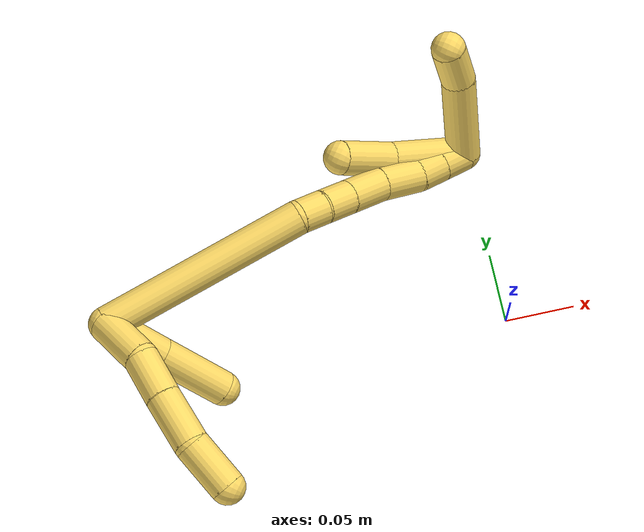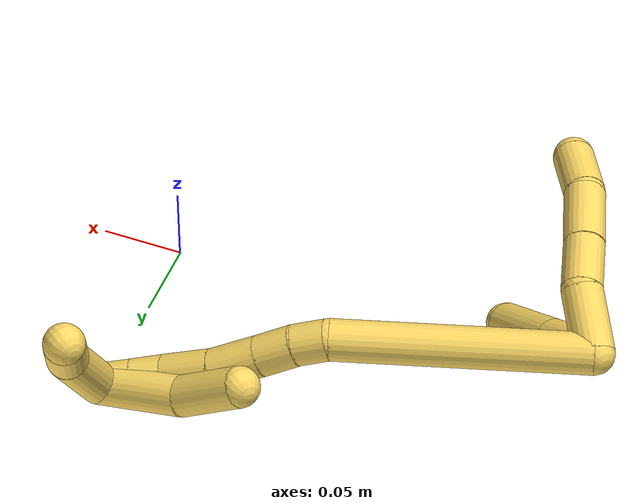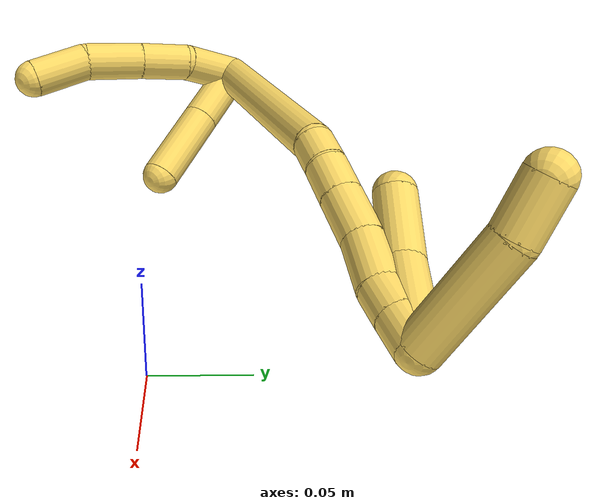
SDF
<sdf version="1.7">
 <world name="default">
  <model name="5">
   <static>0</static>
   <link name="5">
    <collision name="collision-cylinder-e_1_2_8">
     <pose>-0.006412 -0.009242 -0.016908 2.64135 -0.321212 -1.13027</pose>
     <geometry><cylinder><radius>0.0125</radius><length>0.040617</length></cylinder></geometry>
     <surface>
      <friction><ode><mu>1.16</mu><mu2>1.16</mu2><slip1>0</slip1><slip2>0</slip2></ode></friction>
      <contact><ode><kp>1e+06</kp><kd>1</kd><max_vel>0</max_vel><min_depth>0.001</min_depth></ode></contact>
     </surface>
    </collision>
    <visual name="visual-cylinder-e_1_2_8">
     <pose>-0.006412 -0.009242 -0.016908 2.64135 -0.321212 -1.13027</pose>
     <geometry><cylinder><radius>0.0125</radius><length>0.040617</length></cylinder></geometry>
     <material><ambient>1 0.858824 0.4 1</ambient></material>
    </visual>
    <collision name="collision-cylinder-e_2_8_9">
     <pose>-0.022234 -0.022338 -0.046853 2.85416 -0.605543 -2.27392</pose>
     <geometry><cylinder><radius>0.0125</radius><length>0.033066</length></cylinder></geometry>
     <surface>
      <friction><ode><mu>1.16</mu><mu2>1.16</mu2><slip1>0</slip1><slip2>0</slip2></ode></friction>
      <contact><ode><kp>1e+06</kp><kd>1</kd><max_vel>0</max_vel><min_depth>0.001</min_depth></ode></contact>
     </surface>
    </collision>
    <visual name="visual-cylinder-e_2_8_9">
     <pose>-0.022234 -0.022338 -0.046853 2.85416 -0.605543 -2.27392</pose>
     <geometry><cylinder><radius>0.0125</radius><length>0.033066</length></cylinder></geometry>
     <material><ambient>1 0.858824 0.4 1</ambient></material>
    </visual>
    <collision name="collision-cylinder-e_3_9_10">
     <pose>-0.042333 -0.029927 -0.075676 2.9093 -0.582555 -2.39935</pose>
     <geometry><cylinder><radius>0.0125</radius><length>0.038855</length></cylinder></geometry>
     <surface>
      <friction><ode><mu>1.16</mu><mu2>1.16</mu2><slip1>0</slip1><slip2>0</slip2></ode></friction>
      <contact><ode><kp>1e+06</kp><kd>1</kd><max_vel>0</max_vel><min_depth>0.001</min_depth></ode></contact>
     </surface>
    </collision>
    <visual name="visual-cylinder-e_3_9_10">
     <pose>-0.042333 -0.029927 -0.075676 2.9093 -0.582555 -2.39935</pose>
     <geometry><cylinder><radius>0.0125</radius><length>0.038855</length></cylinder></geometry>
     <material><ambient>1 0.858824 0.4 1</ambient></material>
    </visual>
    <collision name="collision-cylinder-e_4_10_6">
     <pose>-0.060843 -0.032426 -0.108438 -3.06895 -0.430743 2.8124</pose>
     <geometry><cylinder><radius>0.0125</radius><length>0.037462</length></cylinder></geometry>
     <surface>
      <friction><ode><mu>1.16</mu><mu2>1.16</mu2><slip1>0</slip1><slip2>0</slip2></ode></friction>
      <contact><ode><kp>1e+06</kp><kd>1</kd><max_vel>0</max_vel><min_depth>0.001</min_depth></ode></contact>
     </surface>
    </collision>
    <visual name="visual-cylinder-e_4_10_6">
     <pose>-0.060843 -0.032426 -0.108438 -3.06895 -0.430743 2.8124</pose>
     <geometry><cylinder><radius>0.0125</radius><length>0.037462</length></cylinder></geometry>
     <material><ambient>1 0.858824 0.4 1</ambient></material>
    </visual>
    <collision name="collision-cylinder-e_1_2_11">
     <pose>-0.000646 0.01038 -0.020521 -2.67328 -0.028075 0.117573</pose>
     <geometry><cylinder><radius>0.0125</radius><length>0.046011</length></cylinder></geometry>
     <surface>
      <friction><ode><mu>1.16</mu><mu2>1.16</mu2><slip1>0</slip1><slip2>0</slip2></ode></friction>
      <contact><ode><kp>1e+06</kp><kd>1</kd><max_vel>0</max_vel><min_depth>0.001</min_depth></ode></contact>
     </surface>
    </collision>
    <visual name="visual-cylinder-e_1_2_11">
     <pose>-0.000646 0.01038 -0.020521 -2.67328 -0.028075 0.117573</pose>
     <geometry><cylinder><radius>0.0125</radius><length>0.046011</length></cylinder></geometry>
     <material><ambient>1 0.858824 0.4 1</ambient></material>
    </visual>
    <collision name="collision-cylinder-e_2_11_5">
     <pose>-0.001935 0.032954 -0.065116 -2.67276 -0.023854 0.099811</pose>
     <geometry><cylinder><radius>0.0125</radius><length>0.053989</length></cylinder></geometry>
     <surface>
      <friction><ode><mu>1.16</mu><mu2>1.16</mu2><slip1>0</slip1><slip2>0</slip2></ode></friction>
      <contact><ode><kp>1e+06</kp><kd>1</kd><max_vel>0</max_vel><min_depth>0.001</min_depth></ode></contact>
     </surface>
    </collision>
    <visual name="visual-cylinder-e_2_11_5">
     <pose>-0.001935 0.032954 -0.065116 -2.67276 -0.023854 0.099811</pose>
     <geometry><cylinder><radius>0.0125</radius><length>0.053989</length></cylinder></geometry>
     <material><ambient>1 0.858824 0.4 1</ambient></material>
    </visual>
    <collision name="collision-cylinder-e_1_2_12">
     <pose>0.062607 0.00217 -0.044612 -3.093 0.95112 -3.04728</pose>
     <geometry><cylinder><radius>0.0125</radius><length>0.153812</length></cylinder></geometry>
     <surface>
      <friction><ode><mu>1.16</mu><mu2>1.16</mu2><slip1>0</slip1><slip2>0</slip2></ode></friction>
      <contact><ode><kp>1e+06</kp><kd>1</kd><max_vel>0</max_vel><min_depth>0.001</min_depth></ode></contact>
     </surface>
    </collision>
    <visual name="visual-cylinder-e_1_2_12">
     <pose>0.062607 0.00217 -0.044612 -3.093 0.95112 -3.04728</pose>
     <geometry><cylinder><radius>0.0125</radius><length>0.153812</length></cylinder></geometry>
     <material><ambient>1 0.858824 0.4 1</ambient></material>
    </visual>
    <collision name="collision-cylinder-e_2_12_13">
     <pose>0.132626 0.007943 -0.095234 -2.6014 0.813463 -1.99908</pose>
     <geometry><cylinder><radius>0.0125</radius><length>0.020401</length></cylinder></geometry>
     <surface>
      <friction><ode><mu>1.16</mu><mu2>1.16</mu2><slip1>0</slip1><slip2>0</slip2></ode></friction>
      <contact><ode><kp>1e+06</kp><kd>1</kd><max_vel>0</max_vel><min_depth>0.001</min_depth></ode></contact>
     </surface>
    </collision>
    <visual name="visual-cylinder-e_2_12_13">
     <pose>0.132626 0.007943 -0.095234 -2.6014 0.813463 -1.99908</pose>
     <geometry><cylinder><radius>0.0125</radius><length>0.020401</length></cylinder></geometry>
     <material><ambient>1 0.858824 0.4 1</ambient></material>
    </visual>
    <collision name="collision-cylinder-e_3_13_14">
     <pose>0.14803 0.01704 -0.107427 -2.41531 0.768293 -1.63258</pose>
     <geometry><cylinder><radius>0.0125</radius><length>0.023002</length></cylinder></geometry>
     <surface>
      <friction><ode><mu>1.16</mu><mu2>1.16</mu2><slip1>0</slip1><slip2>0</slip2></ode></friction>
      <contact><ode><kp>1e+06</kp><kd>1</kd><max_vel>0</max_vel><min_depth>0.001</min_depth></ode></contact>
     </surface>
    </collision>
    <visual name="visual-cylinder-e_3_13_14">
     <pose>0.14803 0.01704 -0.107427 -2.41531 0.768293 -1.63258</pose>
     <geometry><cylinder><radius>0.0125</radius><length>0.023002</length></cylinder></geometry>
     <material><ambient>1 0.858824 0.4 1</ambient></material>
    </visual>
    <collision name="collision-cylinder-e_4_14_15">
     <pose>0.166635 0.029529 -0.121856 -2.43789 0.77599 -1.67789</pose>
     <geometry><cylinder><radius>0.0125</radius><length>0.030304</length></cylinder></geometry>
     <surface>
      <friction><ode><mu>1.16</mu><mu2>1.16</mu2><slip1>0</slip1><slip2>0</slip2></ode></friction>
      <contact><ode><kp>1e+06</kp><kd>1</kd><max_vel>0</max_vel><min_depth>0.001</min_depth></ode></contact>
     </surface>
    </collision>
    <visual name="visual-cylinder-e_4_14_15">
     <pose>0.166635 0.029529 -0.121856 -2.43789 0.77599 -1.67789</pose>
     <geometry><cylinder><radius>0.0125</radius><length>0.030304</length></cylinder></geometry>
     <material><ambient>1 0.858824 0.4 1</ambient></material>
    </visual>
    <collision name="collision-cylinder-e_5_15_16">
     <pose>0.18723 0.042794 -0.14081 -2.61211 0.677499 -1.82992</pose>
     <geometry><cylinder><radius>0.0125</radius><length>0.03185</length></cylinder></geometry>
     <surface>
      <friction><ode><mu>1.16</mu><mu2>1.16</mu2><slip1>0</slip1><slip2>0</slip2></ode></friction>
      <contact><ode><kp>1e+06</kp><kd>1</kd><max_vel>0</max_vel><min_depth>0.001</min_depth></ode></contact>
     </surface>
    </collision>
    <visual name="visual-cylinder-e_5_15_16">
     <pose>0.18723 0.042794 -0.14081 -2.61211 0.677499 -1.82992</pose>
     <geometry><cylinder><radius>0.0125</radius><length>0.03185</length></cylinder></geometry>
     <material><ambient>1 0.858824 0.4 1</ambient></material>
    </visual>
    <collision name="collision-cylinder-e_6_16_17">
     <pose>0.204877 0.052024 -0.157264 -2.66543 0.870143 -2.17917</pose>
     <geometry><cylinder><radius>0.0125</radius><length>0.020052</length></cylinder></geometry>
     <surface>
      <friction><ode><mu>1.16</mu><mu2>1.16</mu2><slip1>0</slip1><slip2>0</slip2></ode></friction>
      <contact><ode><kp>1e+06</kp><kd>1</kd><max_vel>0</max_vel><min_depth>0.001</min_depth></ode></contact>
     </surface>
    </collision>
    <visual name="visual-cylinder-e_6_16_17">
     <pose>0.204877 0.052024 -0.157264 -2.66543 0.870143 -2.17917</pose>
     <geometry><cylinder><radius>0.0125</radius><length>0.020052</length></cylinder></geometry>
     <material><ambient>1 0.858824 0.4 1</ambient></material>
    </visual>
    <collision name="collision-cylinder-e_7_17_1">
     <pose>0.220505 0.057806 -0.168884 -2.69419 0.885037 -2.24636</pose>
     <geometry><cylinder><radius>0.0125</radius><length>0.020578</length></cylinder></geometry>
     <surface>
      <friction><ode><mu>1.16</mu><mu2>1.16</mu2><slip1>0</slip1><slip2>0</slip2></ode></friction>
      <contact><ode><kp>1e+06</kp><kd>1</kd><max_vel>0</max_vel><min_depth>0.001</min_depth></ode></contact>
     </surface>
    </collision>
    <visual name="visual-cylinder-e_7_17_1">
     <pose>0.220505 0.057806 -0.168884 -2.69419 0.885037 -2.24636</pose>
     <geometry><cylinder><radius>0.0125</radius><length>0.020578</length></cylinder></geometry>
     <material><ambient>1 0.858824 0.4 1</ambient></material>
    </visual>
    <collision name="collision-cylinder-e_1_1_18">
     <pose>0.246169 0.033822 -0.162644 1.14628 0.541746 0.354693</pose>
     <geometry><cylinder><radius>0.0125</radius><length>0.068657</length></cylinder></geometry>
     <surface>
      <friction><ode><mu>1.16</mu><mu2>1.16</mu2><slip1>0</slip1><slip2>0</slip2></ode></friction>
      <contact><ode><kp>1e+06</kp><kd>1</kd><max_vel>0</max_vel><min_depth>0.001</min_depth></ode></contact>
     </surface>
    </collision>
    <visual name="visual-cylinder-e_1_1_18">
     <pose>0.246169 0.033822 -0.162644 1.14628 0.541746 0.354693</pose>
     <geometry><cylinder><radius>0.0125</radius><length>0.068657</length></cylinder></geometry>
     <material><ambient>1 0.858824 0.4 1</ambient></material>
    </visual>
    <collision name="collision-cylinder-e_2_18_4">
     <pose>0.268948 -0.005983 -0.143405 1.06958 0.329972 0.196622</pose>
     <geometry><cylinder><radius>0.0125</radius><length>0.031343</length></cylinder></geometry>
     <surface>
      <friction><ode><mu>1.16</mu><mu2>1.16</mu2><slip1>0</slip1><slip2>0</slip2></ode></friction>
      <contact><ode><kp>1e+06</kp><kd>1</kd><max_vel>0</max_vel><min_depth>0.001</min_depth></ode></contact>
     </surface>
    </collision>
    <visual name="visual-cylinder-e_2_18_4">
     <pose>0.268948 -0.005983 -0.143405 1.06958 0.329972 0.196622</pose>
     <geometry><cylinder><radius>0.0125</radius><length>0.031343</length></cylinder></geometry>
     <material><ambient>1 0.858824 0.4 1</ambient></material>
    </visual>
    <collision name="collision-cylinder-e_1_1_19">
     <pose>0.213924 0.053782 -0.151744 0.288998 -0.544631 -0.081225</pose>
     <geometry><cylinder><radius>0.0125</radius><length>0.056141</length></cylinder></geometry>
     <surface>
      <friction><ode><mu>1.16</mu><mu2>1.16</mu2><slip1>0</slip1><slip2>0</slip2></ode></friction>
      <contact><ode><kp>1e+06</kp><kd>1</kd><max_vel>0</max_vel><min_depth>0.001</min_depth></ode></contact>
     </surface>
    </collision>
    <visual name="visual-cylinder-e_1_1_19">
     <pose>0.213924 0.053782 -0.151744 0.288998 -0.544631 -0.081225</pose>
     <geometry><cylinder><radius>0.0125</radius><length>0.056141</length></cylinder></geometry>
     <material><ambient>1 0.858824 0.4 1</ambient></material>
    </visual>
    <collision name="collision-cylinder-e_2_19_3">
     <pose>0.189749 0.035182 -0.112923 0.639529 -0.454732 -0.152925</pose>
     <geometry><cylinder><radius>0.0125</radius><length>0.043859</length></cylinder></geometry>
     <surface>
      <friction><ode><mu>1.16</mu><mu2>1.16</mu2><slip1>0</slip1><slip2>0</slip2></ode></friction>
      <contact><ode><kp>1e+06</kp><kd>1</kd><max_vel>0</max_vel><min_depth>0.001</min_depth></ode></contact>
     </surface>
    </collision>
    <visual name="visual-cylinder-e_2_19_3">
     <pose>0.189749 0.035182 -0.112923 0.639529 -0.454732 -0.152925</pose>
     <geometry><cylinder><radius>0.0125</radius><length>0.043859</length></cylinder></geometry>
     <material><ambient>1 0.858824 0.4 1</ambient></material>
    </visual>
    <collision name="collision-sphere-3">
     <pose>0.180117 0.023424 -0.097116 0 -0 0</pose>
     <geometry><sphere><radius>0.0125</radius></sphere></geometry>
     <surface>
      <friction><ode><mu>1.16</mu><mu2>1.16</mu2><slip1>0</slip1><slip2>0</slip2></ode></friction>
      <contact><ode><kp>1e+06</kp><kd>1</kd><max_vel>0</max_vel><min_depth>0.001</min_depth></ode></contact>
     </surface>
    </collision>
    <visual name="visual-sphere-3">
     <pose>0.180117 0.023424 -0.097116 0 -0 0</pose>
     <geometry><sphere><radius>0.0125</radius></sphere></geometry>
     <material><ambient>1 0.858824 0.4 1</ambient></material>
    </visual>
    <collision name="collision-sphere-19">
     <pose>0.199381 0.04694 -0.128731 0 -0 0</pose>
     <geometry><sphere><radius>0.0125</radius></sphere></geometry>
     <surface>
      <friction><ode><mu>1.16</mu><mu2>1.16</mu2><slip1>0</slip1><slip2>0</slip2></ode></friction>
      <contact><ode><kp>1e+06</kp><kd>1</kd><max_vel>0</max_vel><min_depth>0.001</min_depth></ode></contact>
     </surface>
    </collision>
    <visual name="visual-sphere-19">
     <pose>0.199381 0.04694 -0.128731 0 -0 0</pose>
     <geometry><sphere><radius>0.0125</radius></sphere></geometry>
     <material><ambient>1 0.858824 0.4 1</ambient></material>
    </visual>
    <collision name="collision-sphere-11">
     <pose>-0.001292 0.02076 -0.041041 0 -0 0</pose>
     <geometry><sphere><radius>0.0125</radius></sphere></geometry>
     <surface>
      <friction><ode><mu>1.16</mu><mu2>1.16</mu2><slip1>0</slip1><slip2>0</slip2></ode></friction>
      <contact><ode><kp>1e+06</kp><kd>1</kd><max_vel>0</max_vel><min_depth>0.001</min_depth></ode></contact>
     </surface>
    </collision>
    <visual name="visual-sphere-11">
     <pose>-0.001292 0.02076 -0.041041 0 -0 0</pose>
     <geometry><sphere><radius>0.0125</radius></sphere></geometry>
     <material><ambient>1 0.858824 0.4 1</ambient></material>
    </visual>
    <collision name="collision-sphere-6">
     <pose>-0.068664 -0.031191 -0.125414 0 -0 0</pose>
     <geometry><sphere><radius>0.0125</radius></sphere></geometry>
     <surface>
      <friction><ode><mu>1.16</mu><mu2>1.16</mu2><slip1>0</slip1><slip2>0</slip2></ode></friction>
      <contact><ode><kp>1e+06</kp><kd>1</kd><max_vel>0</max_vel><min_depth>0.001</min_depth></ode></contact>
     </surface>
    </collision>
    <visual name="visual-sphere-6">
     <pose>-0.068664 -0.031191 -0.125414 0 -0 0</pose>
     <geometry><sphere><radius>0.0125</radius></sphere></geometry>
     <material><ambient>1 0.858824 0.4 1</ambient></material>
    </visual>
    <collision name="collision-sphere-10">
     <pose>-0.053022 -0.033662 -0.091463 0 -0 0</pose>
     <geometry><sphere><radius>0.0125</radius></sphere></geometry>
     <surface>
      <friction><ode><mu>1.16</mu><mu2>1.16</mu2><slip1>0</slip1><slip2>0</slip2></ode></friction>
      <contact><ode><kp>1e+06</kp><kd>1</kd><max_vel>0</max_vel><min_depth>0.001</min_depth></ode></contact>
     </surface>
    </collision>
    <visual name="visual-sphere-10">
     <pose>-0.053022 -0.033662 -0.091463 0 -0 0</pose>
     <geometry><sphere><radius>0.0125</radius></sphere></geometry>
     <material><ambient>1 0.858824 0.4 1</ambient></material>
    </visual>
    <collision name="collision-sphere-9">
     <pose>-0.031645 -0.026192 -0.059888 0 -0 0</pose>
     <geometry><sphere><radius>0.0125</radius></sphere></geometry>
     <surface>
      <friction><ode><mu>1.16</mu><mu2>1.16</mu2><slip1>0</slip1><slip2>0</slip2></ode></friction>
      <contact><ode><kp>1e+06</kp><kd>1</kd><max_vel>0</max_vel><min_depth>0.001</min_depth></ode></contact>
     </surface>
    </collision>
    <visual name="visual-sphere-9">
     <pose>-0.031645 -0.026192 -0.059888 0 -0 0</pose>
     <geometry><sphere><radius>0.0125</radius></sphere></geometry>
     <material><ambient>1 0.858824 0.4 1</ambient></material>
    </visual>
    <collision name="collision-sphere-2">
     <geometry><sphere><radius>0.0125</radius></sphere></geometry>
     <surface>
      <friction><ode><mu>1.16</mu><mu2>1.16</mu2><slip1>0</slip1><slip2>0</slip2></ode></friction>
      <contact><ode><kp>1e+06</kp><kd>1</kd><max_vel>0</max_vel><min_depth>0.001</min_depth></ode></contact>
     </surface>
    </collision>
    <visual name="visual-sphere-2">
     <geometry><sphere><radius>0.0125</radius></sphere></geometry>
     <material><ambient>1 0.858824 0.4 1</ambient></material>
    </visual>
    <collision name="collision-sphere-8">
     <pose>-0.012823 -0.018485 -0.033817 0 -0 0</pose>
     <geometry><sphere><radius>0.0125</radius></sphere></geometry>
     <surface>
      <friction><ode><mu>1.16</mu><mu2>1.16</mu2><slip1>0</slip1><slip2>0</slip2></ode></friction>
      <contact><ode><kp>1e+06</kp><kd>1</kd><max_vel>0</max_vel><min_depth>0.001</min_depth></ode></contact>
     </surface>
    </collision>
    <visual name="visual-sphere-8">
     <pose>-0.012823 -0.018485 -0.033817 0 -0 0</pose>
     <geometry><sphere><radius>0.0125</radius></sphere></geometry>
     <material><ambient>1 0.858824 0.4 1</ambient></material>
    </visual>
    <collision name="collision-sphere-5">
     <pose>-0.002579 0.045148 -0.089191 0 -0 0</pose>
     <geometry><sphere><radius>0.0125</radius></sphere></geometry>
     <surface>
      <friction><ode><mu>1.16</mu><mu2>1.16</mu2><slip1>0</slip1><slip2>0</slip2></ode></friction>
      <contact><ode><kp>1e+06</kp><kd>1</kd><max_vel>0</max_vel><min_depth>0.001</min_depth></ode></contact>
     </surface>
    </collision>
    <visual name="visual-sphere-5">
     <pose>-0.002579 0.045148 -0.089191 0 -0 0</pose>
     <geometry><sphere><radius>0.0125</radius></sphere></geometry>
     <material><ambient>1 0.858824 0.4 1</ambient></material>
    </visual>
    <collision name="collision-sphere-12">
     <pose>0.125213 0.004339 -0.089224 0 -0 0</pose>
     <geometry><sphere><radius>0.0125</radius></sphere></geometry>
     <surface>
      <friction><ode><mu>1.16</mu><mu2>1.16</mu2><slip1>0</slip1><slip2>0</slip2></ode></friction>
      <contact><ode><kp>1e+06</kp><kd>1</kd><max_vel>0</max_vel><min_depth>0.001</min_depth></ode></contact>
     </surface>
    </collision>
    <visual name="visual-sphere-12">
     <pose>0.125213 0.004339 -0.089224 0 -0 0</pose>
     <geometry><sphere><radius>0.0125</radius></sphere></geometry>
     <material><ambient>1 0.858824 0.4 1</ambient></material>
    </visual>
    <collision name="collision-sphere-13">
     <pose>0.140038 0.011547 -0.101244 0 -0 0</pose>
     <geometry><sphere><radius>0.0125</radius></sphere></geometry>
     <surface>
      <friction><ode><mu>1.16</mu><mu2>1.16</mu2><slip1>0</slip1><slip2>0</slip2></ode></friction>
      <contact><ode><kp>1e+06</kp><kd>1</kd><max_vel>0</max_vel><min_depth>0.001</min_depth></ode></contact>
     </surface>
    </collision>
    <visual name="visual-sphere-13">
     <pose>0.140038 0.011547 -0.101244 0 -0 0</pose>
     <geometry><sphere><radius>0.0125</radius></sphere></geometry>
     <material><ambient>1 0.858824 0.4 1</ambient></material>
    </visual>
    <collision name="collision-sphere-14">
     <pose>0.156023 0.022532 -0.113611 0 -0 0</pose>
     <geometry><sphere><radius>0.0125</radius></sphere></geometry>
     <surface>
      <friction><ode><mu>1.16</mu><mu2>1.16</mu2><slip1>0</slip1><slip2>0</slip2></ode></friction>
      <contact><ode><kp>1e+06</kp><kd>1</kd><max_vel>0</max_vel><min_depth>0.001</min_depth></ode></contact>
     </surface>
    </collision>
    <visual name="visual-sphere-14">
     <pose>0.156023 0.022532 -0.113611 0 -0 0</pose>
     <geometry><sphere><radius>0.0125</radius></sphere></geometry>
     <material><ambient>1 0.858824 0.4 1</ambient></material>
    </visual>
    <collision name="collision-sphere-15">
     <pose>0.177248 0.036527 -0.130101 0 -0 0</pose>
     <geometry><sphere><radius>0.0125</radius></sphere></geometry>
     <surface>
      <friction><ode><mu>1.16</mu><mu2>1.16</mu2><slip1>0</slip1><slip2>0</slip2></ode></friction>
      <contact><ode><kp>1e+06</kp><kd>1</kd><max_vel>0</max_vel><min_depth>0.001</min_depth></ode></contact>
     </surface>
    </collision>
    <visual name="visual-sphere-15">
     <pose>0.177248 0.036527 -0.130101 0 -0 0</pose>
     <geometry><sphere><radius>0.0125</radius></sphere></geometry>
     <material><ambient>1 0.858824 0.4 1</ambient></material>
    </visual>
    <collision name="collision-sphere-16">
     <pose>0.197213 0.049061 -0.151519 0 -0 0</pose>
     <geometry><sphere><radius>0.0125</radius></sphere></geometry>
     <surface>
      <friction><ode><mu>1.16</mu><mu2>1.16</mu2><slip1>0</slip1><slip2>0</slip2></ode></friction>
      <contact><ode><kp>1e+06</kp><kd>1</kd><max_vel>0</max_vel><min_depth>0.001</min_depth></ode></contact>
     </surface>
    </collision>
    <visual name="visual-sphere-16">
     <pose>0.197213 0.049061 -0.151519 0 -0 0</pose>
     <geometry><sphere><radius>0.0125</radius></sphere></geometry>
     <material><ambient>1 0.858824 0.4 1</ambient></material>
    </visual>
    <collision name="collision-sphere-17">
     <pose>0.212542 0.054987 -0.163009 0 -0 0</pose>
     <geometry><sphere><radius>0.0125</radius></sphere></geometry>
     <surface>
      <friction><ode><mu>1.16</mu><mu2>1.16</mu2><slip1>0</slip1><slip2>0</slip2></ode></friction>
      <contact><ode><kp>1e+06</kp><kd>1</kd><max_vel>0</max_vel><min_depth>0.001</min_depth></ode></contact>
     </surface>
    </collision>
    <visual name="visual-sphere-17">
     <pose>0.212542 0.054987 -0.163009 0 -0 0</pose>
     <geometry><sphere><radius>0.0125</radius></sphere></geometry>
     <material><ambient>1 0.858824 0.4 1</ambient></material>
    </visual>
    <collision name="collision-sphere-1">
     <pose>0.228468 0.060624 -0.174758 0 -0 0</pose>
     <geometry><sphere><radius>0.0125</radius></sphere></geometry>
     <surface>
      <friction><ode><mu>1.16</mu><mu2>1.16</mu2><slip1>0</slip1><slip2>0</slip2></ode></friction>
      <contact><ode><kp>1e+06</kp><kd>1</kd><max_vel>0</max_vel><min_depth>0.001</min_depth></ode></contact>
     </surface>
    </collision>
    <visual name="visual-sphere-1">
     <pose>0.228468 0.060624 -0.174758 0 -0 0</pose>
     <geometry><sphere><radius>0.0125</radius></sphere></geometry>
     <material><ambient>1 0.858824 0.4 1</ambient></material>
    </visual>
    <collision name="collision-sphere-18">
     <pose>0.26387 0.007019 -0.150529 0 -0 0</pose>
     <geometry><sphere><radius>0.0125</radius></sphere></geometry>
     <surface>
      <friction><ode><mu>1.16</mu><mu2>1.16</mu2><slip1>0</slip1><slip2>0</slip2></ode></friction>
      <contact><ode><kp>1e+06</kp><kd>1</kd><max_vel>0</max_vel><min_depth>0.001</min_depth></ode></contact>
     </surface>
    </collision>
    <visual name="visual-sphere-18">
     <pose>0.26387 0.007019 -0.150529 0 -0 0</pose>
     <geometry><sphere><radius>0.0125</radius></sphere></geometry>
     <material><ambient>1 0.858824 0.4 1</ambient></material>
    </visual>
    <collision name="collision-sphere-4">
     <pose>0.274025 -0.018985 -0.136282 0 -0 0</pose>
     <geometry><sphere><radius>0.0125</radius></sphere></geometry>
     <surface>
      <friction><ode><mu>1.16</mu><mu2>1.16</mu2><slip1>0</slip1><slip2>0</slip2></ode></friction>
      <contact><ode><kp>1e+06</kp><kd>1</kd><max_vel>0</max_vel><min_depth>0.001</min_depth></ode></contact>
     </surface>
    </collision>
    <visual name="visual-sphere-4">
     <pose>0.274025 -0.018985 -0.136282 0 -0 0</pose>
     <geometry><sphere><radius>0.0125</radius></sphere></geometry>
     <material><ambient>1 0.858824 0.4 1</ambient></material>
    </visual>
    <inertial>
     <pose>0.101344 0.014454 -0.091885 0 -0 0</pose>
     <mass>0.75</mass>
     <inertia>
      <ixx>-0.00013</ixx>
      <ixy>0</ixy>
      <ixz>0</ixz>
      <iyy>0.000319</iyy>
      <iyz>0</iyz>
      <izz>-0.000261</izz>
     </inertia>
    </inertial>
   </link>
   <pose>-0.279137 0.042071 0.063128 -1.49615 -0.098809 0.922936</pose>
  </model>
 </world>
</sdf>
